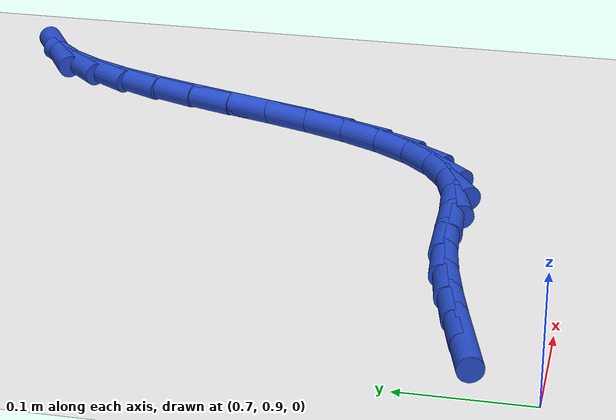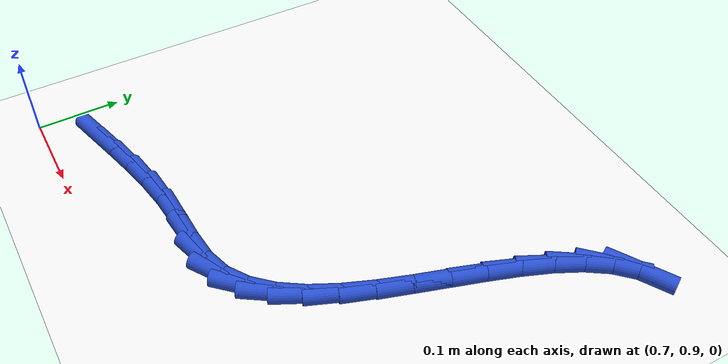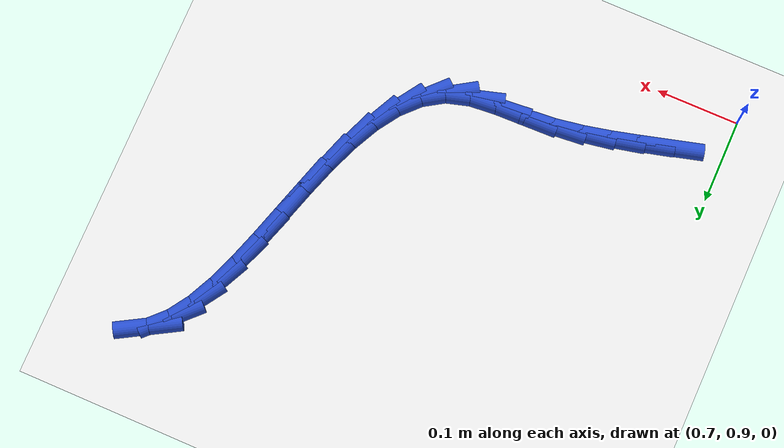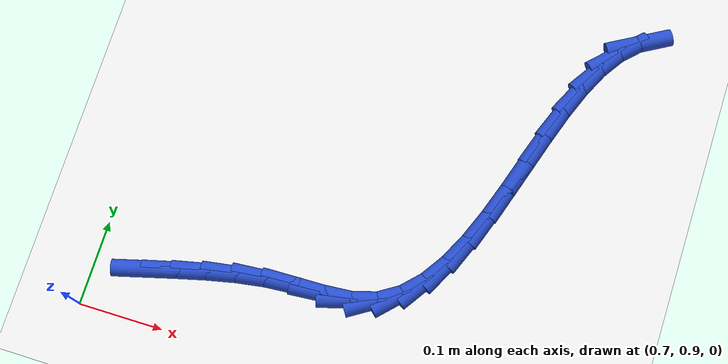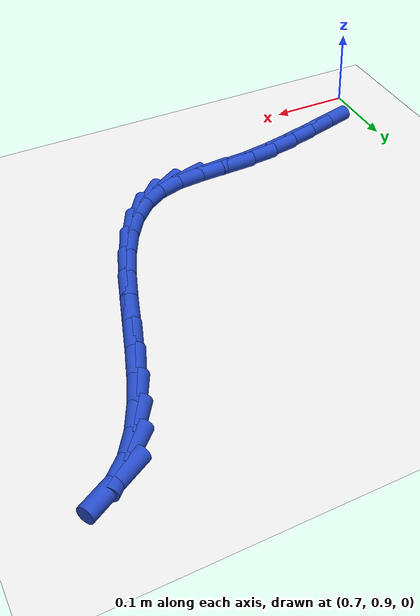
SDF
<sdf version="1.6">
 <world name="default">
  <model name="ground_plane">
   <static>1</static>
   <link name="link">
    <collision name="collision">
     <geometry><plane><normal>0 0 1</normal><size>100 100</size></plane></geometry>
     <surface><friction><ode><mu>100</mu><mu2>50</mu2></ode></friction></surface>
    </collision>
    <visual name="visual">
     <cast_shadows>0</cast_shadows>
     <geometry><plane><normal>0 0 1</normal><size>100 100</size></plane></geometry>
     <material>
      <script><uri>file://media/materials/scripts/gazebo.material</uri><name>Gazebo/WhiteGlow</name></script>
     </material>
    </visual>
   </link>
  </model>
  <model name="line">
   <link name="link_45">
    <pose>0.7614033485690254 0.9600634444902549 0.01 0 1.57 0.2636804550011287</pose>
    <collision name="collision">
     <geometry><cylinder><radius>0.01</radius><length>0.08</length></cylinder></geometry>
    </collision>
    <visual name="visual">
     <material>
      <script><name>Gazebo/Blue</name><uri>file://media/materials/scripts/gazebo.material</uri></script>
     </material>
     <geometry><cylinder><radius>0.01</radius><length>0.08</length></cylinder></geometry>
    </visual>
   </link>
   <link name="link_46">
    <pose>0.7943815644897892 0.9689664525198854 0.01 0 1.57 0.2513261055935245</pose>
    <collision name="collision">
     <geometry><cylinder><radius>0.01</radius><length>0.08</length></cylinder></geometry>
    </collision>
    <visual name="visual">
     <material>
      <script><name>Gazebo/Blue</name><uri>file://media/materials/scripts/gazebo.material</uri></script>
     </material>
     <geometry><cylinder><radius>0.01</radius><length>0.08</length></cylinder></geometry>
    </visual>
   </link>
   <link name="link_47">
    <pose>0.8276783290760833 0.9775155622301696 0.01 0 1.57 0.21676398331153515</pose>
    <collision name="collision">
     <geometry><cylinder><radius>0.01</radius><length>0.08</length></cylinder></geometry>
    </collision>
    <visual name="visual">
     <material>
      <script><name>Gazebo/Blue</name><uri>file://media/materials/scripts/gazebo.material</uri></script>
     </material>
     <geometry><cylinder><radius>0.01</radius><length>0.08</length></cylinder></geometry>
    </visual>
   </link>
   <link name="link_48">
    <pose>0.861333305413192 0.9849271967790327 0.01 0 1.57 0.1598612374495937</pose>
    <collision name="collision">
     <geometry><cylinder><radius>0.01</radius><length>0.08</length></cylinder></geometry>
    </collision>
    <visual name="visual">
     <material>
      <script><name>Gazebo/Blue</name><uri>file://media/materials/scripts/gazebo.material</uri></script>
     </material>
     <geometry><cylinder><radius>0.01</radius><length>0.08</length></cylinder></geometry>
    </visual>
   </link>
   <link name="link_49">
    <pose>0.8953861565864007 0.9904177793244016 0.01 0 1.57 0.08105850451711168</pose>
    <collision name="collision">
     <geometry><cylinder><radius>0.01</radius><length>0.08</length></cylinder></geometry>
    </collision>
    <visual name="visual">
     <material>
      <script><name>Gazebo/Blue</name><uri>file://media/materials/scripts/gazebo.material</uri></script>
     </material>
     <geometry><cylinder><radius>0.01</radius><length>0.08</length></cylinder></geometry>
    </visual>
   </link>
   <link name="link_50">
    <pose>0.9298706562489153 0.9932191795009903 0.01 0 1.57 0.026573679340926786</pose>
    <collision name="collision">
     <geometry><cylinder><radius>0.01</radius><length>0.08</length></cylinder></geometry>
    </collision>
    <visual name="visual">
     <material>
      <script><name>Gazebo/Blue</name><uri>file://media/materials/scripts/gazebo.material</uri></script>
     </material>
     <geometry><cylinder><radius>0.01</radius><length>0.08</length></cylinder></geometry>
    </visual>
   </link>
   <link name="link_51">
    <pose>0.9642223579543312 0.9941322455407474 0.01 0 1.57 0.08347506815033466</pose>
    <collision name="collision">
     <geometry><cylinder><radius>0.01</radius><length>0.08</length></cylinder></geometry>
    </collision>
    <visual name="visual">
     <material>
      <script><name>Gazebo/Blue</name><uri>file://media/materials/scripts/gazebo.material</uri></script>
     </material>
     <geometry><cylinder><radius>0.01</radius><length>0.08</length></cylinder></geometry>
    </visual>
   </link>
   <link name="link_52">
    <pose>0.9967719321276656 0.9968556520480873 0.01 0 1.57 0.2835726074988414</pose>
    <collision name="collision">
     <geometry><cylinder><radius>0.01</radius><length>0.08</length></cylinder></geometry>
    </collision>
    <visual name="visual">
     <material>
      <script><name>Gazebo/Blue</name><uri>file://media/materials/scripts/gazebo.material</uri></script>
     </material>
     <geometry><cylinder><radius>0.01</radius><length>0.08</length></cylinder></geometry>
    </visual>
   </link>
   <link name="link_53">
    <pose>1.0257741973815702 1.005307675988852 0.01 0 1.57 0.5647721013559556</pose>
    <collision name="collision">
     <geometry><cylinder><radius>0.01</radius><length>0.08</length></cylinder></geometry>
    </collision>
    <visual name="visual">
     <material>
      <script><name>Gazebo/Blue</name><uri>file://media/materials/scripts/gazebo.material</uri></script>
     </material>
     <geometry><cylinder><radius>0.01</radius><length>0.08</length></cylinder></geometry>
    </visual>
   </link>
   <link name="link_54">
    <pose>1.0505899475597635 1.021031366743377 0.01 0 1.57 0.8055773772842348</pose>
    <collision name="collision">
     <geometry><cylinder><radius>0.01</radius><length>0.08</length></cylinder></geometry>
    </collision>
    <visual name="visual">
     <material>
      <script><name>Gazebo/Blue</name><uri>file://media/materials/scripts/gazebo.material</uri></script>
     </material>
     <geometry><cylinder><radius>0.01</radius><length>0.08</length></cylinder></geometry>
    </visual>
   </link>
   <link name="link_55">
    <pose>1.0717480807830457 1.0430611157910508 0.01 0 1.57 0.9848641976815936</pose>
    <collision name="collision">
     <geometry><cylinder><radius>0.01</radius><length>0.08</length></cylinder></geometry>
    </collision>
    <visual name="visual">
     <material>
      <script><name>Gazebo/Blue</name><uri>file://media/materials/scripts/gazebo.material</uri></script>
     </material>
     <geometry><cylinder><radius>0.01</radius><length>0.08</length></cylinder></geometry>
    </visual>
   </link>
   <link name="link_56">
    <pose>1.0898334221185275 1.0703112041224174 0.01 0 1.57 1.1095726935597143</pose>
    <collision name="collision">
     <geometry><cylinder><radius>0.01</radius><length>0.08</length></cylinder></geometry>
    </collision>
    <visual name="visual">
     <material>
      <script><name>Gazebo/Blue</name><uri>file://media/materials/scripts/gazebo.material</uri></script>
     </material>
     <geometry><cylinder><radius>0.01</radius><length>0.08</length></cylinder></geometry>
    </visual>
   </link>
   <link name="link_57">
    <pose>1.1054307966333201 1.1016959127280221 0.01 0 1.57 1.1922746276317209</pose>
    <collision name="collision">
     <geometry><cylinder><radius>0.01</radius><length>0.08</length></cylinder></geometry>
    </collision>
    <visual name="visual">
     <material>
      <script><name>Gazebo/Blue</name><uri>file://media/materials/scripts/gazebo.material</uri></script>
     </material>
     <geometry><cylinder><radius>0.01</radius><length>0.08</length></cylinder></geometry>
    </visual>
   </link>
   <link name="link_58">
    <pose>1.1191250293945343 1.136129522598409 0.01 0 1.57 1.2430330259783198</pose>
    <collision name="collision">
     <geometry><cylinder><radius>0.01</radius><length>0.08</length></cylinder></geometry>
    </collision>
    <visual name="visual">
     <material>
      <script><name>Gazebo/Blue</name><uri>file://media/materials/scripts/gazebo.material</uri></script>
     </material>
     <geometry><cylinder><radius>0.01</radius><length>0.08</length></cylinder></geometry>
    </visual>
   </link>
   <link name="link_59">
    <pose>1.1315009454692815 1.1725263147241234 0.01 0 1.57 1.2680527440014207</pose>
    <collision name="collision">
     <geometry><cylinder><radius>0.01</radius><length>0.08</length></cylinder></geometry>
    </collision>
    <visual name="visual">
     <material>
      <script><name>Gazebo/Blue</name><uri>file://media/materials/scripts/gazebo.material</uri></script>
     </material>
     <geometry><cylinder><radius>0.01</radius><length>0.08</length></cylinder></geometry>
    </visual>
   </link>
   <link name="link_60">
    <pose>1.1431433699246718 1.2098005700957086 0.01 0 1.57 1.2701094827285944</pose>
    <collision name="collision">
     <geometry><cylinder><radius>0.01</radius><length>0.08</length></cylinder></geometry>
    </collision>
    <visual name="visual">
     <material>
      <script><name>Gazebo/Blue</name><uri>file://media/materials/scripts/gazebo.material</uri></script>
     </material>
     <geometry><cylinder><radius>0.01</radius><length>0.08</length></cylinder></geometry>
    </visual>
   </link>
   <link name="link_61">
    <pose>1.1546371278278174 1.2468665697037105 0.01 0 1.57 1.2488971349572502</pose>
    <collision name="collision">
     <geometry><cylinder><radius>0.01</radius><length>0.08</length></cylinder></geometry>
    </collision>
    <visual name="visual">
     <material>
      <script><name>Gazebo/Blue</name><uri>file://media/materials/scripts/gazebo.material</uri></script>
     </material>
     <geometry><cylinder><radius>0.01</radius><length>0.08</length></cylinder></geometry>
    </visual>
   </link>
   <link name="link_62">
    <pose>1.166567044245829 1.2826385945386738 0.01 0 1.57 1.2008159828431813</pose>
    <collision name="collision">
     <geometry><cylinder><radius>0.01</radius><length>0.08</length></cylinder></geometry>
    </collision>
    <visual name="visual">
     <material>
      <script><name>Gazebo/Blue</name><uri>file://media/materials/scripts/gazebo.material</uri></script>
     </material>
     <geometry><cylinder><radius>0.01</radius><length>0.08</length></cylinder></geometry>
    </visual>
   </link>
   <link name="link_63">
    <pose>1.1795179442458164 1.316030925591142 0.01 0 1.57 1.118080885438635</pose>
    <collision name="collision">
     <geometry><cylinder><radius>0.01</radius><length>0.08</length></cylinder></geometry>
    </collision>
    <visual name="visual">
     <material>
      <script><name>Gazebo/Blue</name><uri>file://media/materials/scripts/gazebo.material</uri></script>
     </material>
     <geometry><cylinder><radius>0.01</radius><length>0.08</length></cylinder></geometry>
    </visual>
   </link>
   <link name="link_64">
    <pose>1.194074652894892 1.3459578438516606 0.01 0 1.57 0.9874418955823683</pose>
    <collision name="collision">
     <geometry><cylinder><radius>0.01</radius><length>0.08</length></cylinder></geometry>
    </collision>
    <visual name="visual">
     <material>
      <script><name>Gazebo/Blue</name><uri>file://media/materials/scripts/gazebo.material</uri></script>
     </material>
     <geometry><cylinder><radius>0.01</radius><length>0.08</length></cylinder></geometry>
    </visual>
   </link>
   <link name="link_65">
    <pose>1.2108219952601667 1.3713336303107742 0.01 0 1.57 0.7909030731148624</pose>
    <collision name="collision">
     <geometry><cylinder><radius>0.01</radius><length>0.08</length></cylinder></geometry>
    </collision>
    <visual name="visual">
     <material>
      <script><name>Gazebo/Blue</name><uri>file://media/materials/scripts/gazebo.material</uri></script>
     </material>
     <geometry><cylinder><radius>0.01</radius><length>0.08</length></cylinder></geometry>
    </visual>
   </link>
   <link name="link_66">
    <pose>1.2303447964087508 1.391072565959027 0.01 0 1.57 0.5227936763117119</pose>
    <collision name="collision">
     <geometry><cylinder><radius>0.01</radius><length>0.08</length></cylinder></geometry>
    </collision>
    <visual name="visual">
     <material>
      <script><name>Gazebo/Blue</name><uri>file://media/materials/scripts/gazebo.material</uri></script>
     </material>
     <geometry><cylinder><radius>0.01</radius><length>0.08</length></cylinder></geometry>
    </visual>
   </link>
  </model>
 </world>
</sdf>
